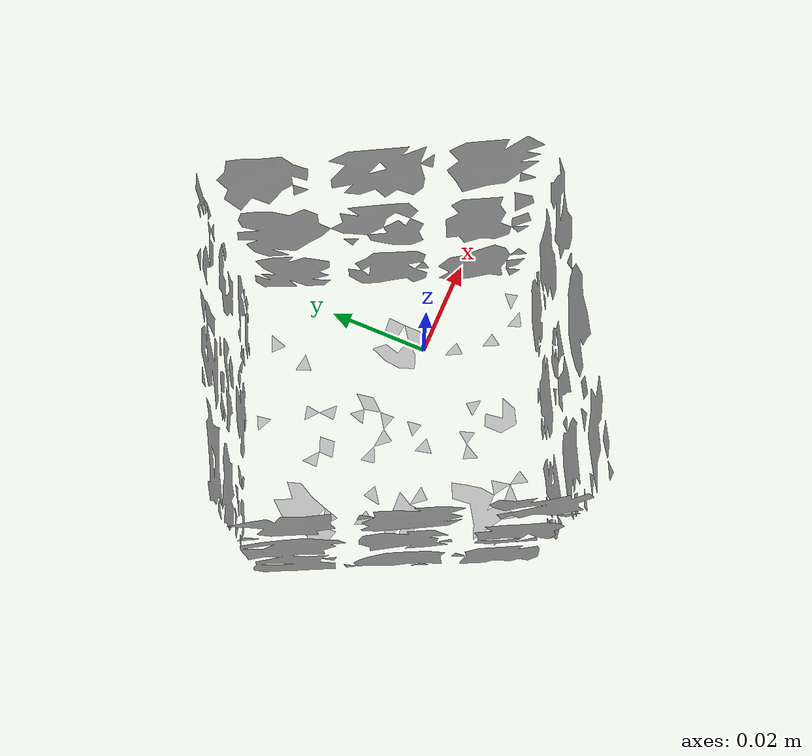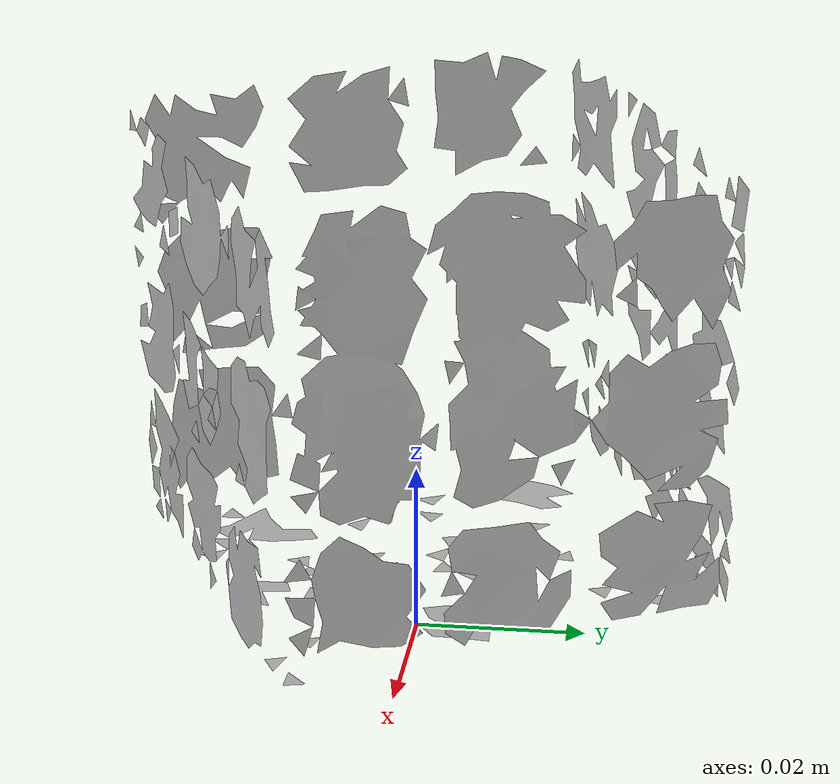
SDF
<?xml version="1.0" ?>
<sdf version="1.4">
  <model name='ycb_077_rubiks_cube'>
    <link name='body'>
      <inertial>
        <mass>0.246884377653</mass>
        <pose>-0.0162190498434 -0.000485290597815 0.0285899281485 0 0 0</pose>
        <inertia>
          <ixx>0.000132908481819</ixx>
          <ixy>1.48422051453e-07</ixy>
          <ixz>-9.77040933618e-08</ixz>
          <iyy>0.000132735795282</iyy>
          <iyz>6.50678156769e-08</iyz>
          <izz>0.000132657230166</izz>
        </inertia>
      </inertial>
      <visual name='ycb_077_rubiks_cube_visual'>
        <pose>0 0 0 0 0 0</pose>

        <geometry>
          <mesh>
            <uri>model://ycb_077_rubiks_cube/meshes/textured.dae</uri>
          </mesh>
        </geometry>
      </visual>
      <collision name='ycb_077_rubiks_cube_collision'>
        <pose>0 0 0 0 0 0</pose>
        <geometry>
          <mesh>
            <uri>model://ycb_077_rubiks_cube/meshes/nontextured.stl</uri>
          </mesh>
        </geometry>
        <max_contacts>10</max_contacts>
      </collision>
    </link>
   <static>1</static>
  </model>
</sdf>
